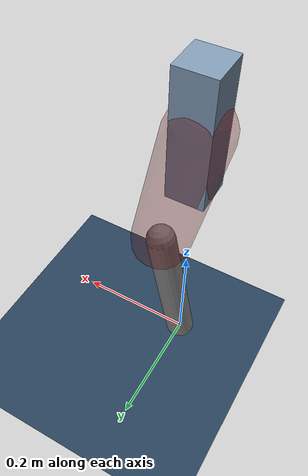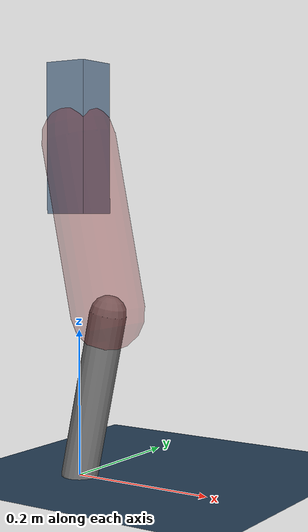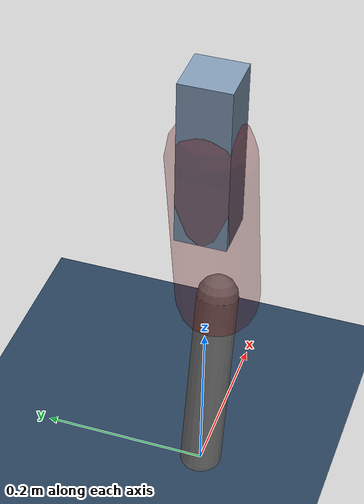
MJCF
<mujoco model="Hopper2D">
	<compiler inertiafromgeom="true" angle="radian" />
	<option timestep="0.001" integrator="implicit" cone="elliptic" solver="Newton" tolerance="1e-10" />

	<default>
		<geom contype="1" conaffinity="1" condim="3" friction="2 0.005 0.0001" solref="0.005 1" />
		<joint limited="true" damping="0.1" />
	</default>

	<asset>
		<texture name="skybox" type="skybox" builtin="gradient" rgb1=".4 .6 .8" rgb2="0 0 0" width="800" height="800" />
		<texture name="grid" type="2d" builtin="checker" rgb1=".1 .2 .3" rgb2=".2 .3 .4" width="300" height="300" mark="edge" markrgb=".2 .3 .4" />
		<material name="ground" texture="grid" texrepeat="1 1" texuniform="true" reflectance="0.1" />
		<material name="leg" rgba="0.5 0.6 0.7 1" />
	</asset>

	<worldbody>

		<geom name="floor" type="plane" size="5 5 0.25" material="ground" />

		<light directional="false" diffuse="0.8 0.8 0.8" specular="0.3 0.3 0.3" pos="0 0 2" dir="0 0 -1" />
		<light mode="targetbodycom" target="base" directional="false" diffuse="0.8 0.8 0.8" specular="0.3 0.3 0.3" pos="0 0 2" dir="0 0 -1" />

		<camera name="fixed" pos="0 -2 1" xyaxes="1 0 0 0 0 1" />
		<camera name="tracking" mode="trackcom" pos="0 -3 1" />

		<body name="root" pos="0 0 0.45724739889524646">
			<joint name="slide_x" type="slide" axis="1 0 0" range="-100 100" />
			<joint name="slide_z" type="slide" axis="0 0 1" range="0 10" />

			<body name="base" pos="0 0 0">
				<geom name="torso" type="box" size="0.03 0.03 0.1" mass="2.831" material="leg" />

				<body name="link1" pos="0 0 0" euler="0 1.3672029357741682 0">
					<joint type="hinge" axis="0 -1 0" pos="0 0 0" name="hinge1" limited="true" range="-3.14 3.14" stiffness="0" damping="0.1" />
					<geom name="thigh" type="capsule" fromto="0 0 0 0.23773480317395054 0 0" size="0.05" rgba="0.5 0 0 0.3" mass="0.8248104882522714" />

					<body name="link2" pos="0.23773480317395054 0 0" euler="0 0.4145886403791466 0">
						<joint type="hinge" axis="0 -1 0" pos="0 0 0" name="hinge2" limited="true" range="-3.14 3.14" stiffness="0" damping="0.1" />
						<geom name="shank" type="capsule" fromto="0 0 0 0.2295125957212959 0 0" size="0.025" mass="0.4256100765770367" />

					</body>
				</body>
			</body>
		</body>
	</worldbody>

	<actuator>
		<motor name="torque1" joint="hinge1" ctrlrange="-173.85285583127745 173.85285583127745" ctrllimited="true" gear="1" />
		<motor name="torque2" joint="hinge2" ctrlrange="-37.38320307225992 37.38320307225992" ctrllimited="true" gear="1" />
	</actuator>
</mujoco>
